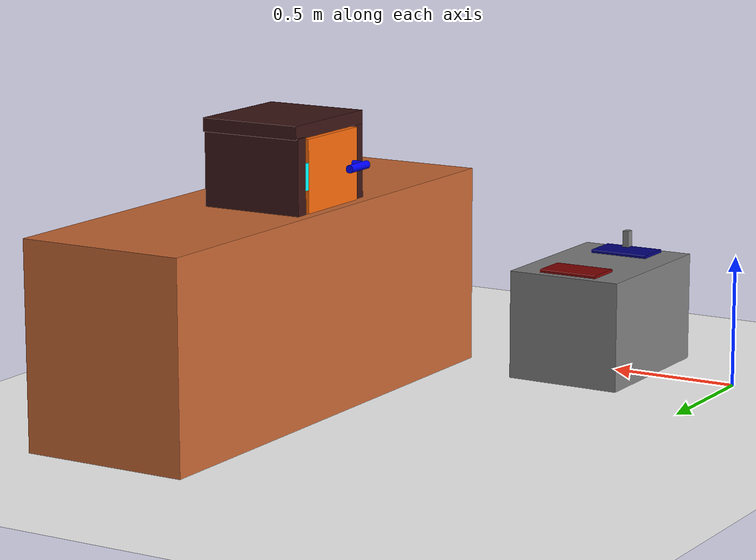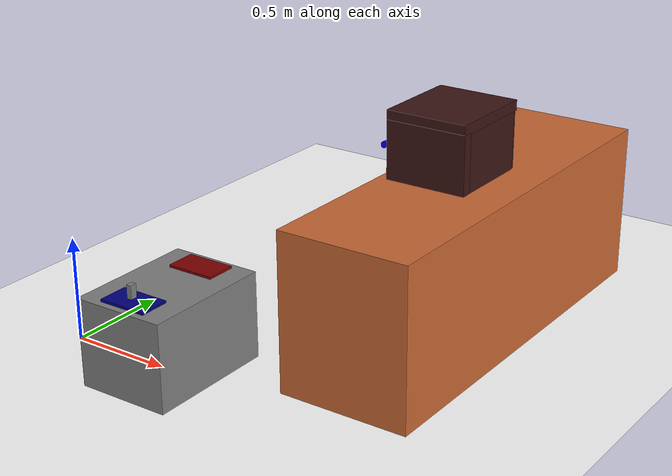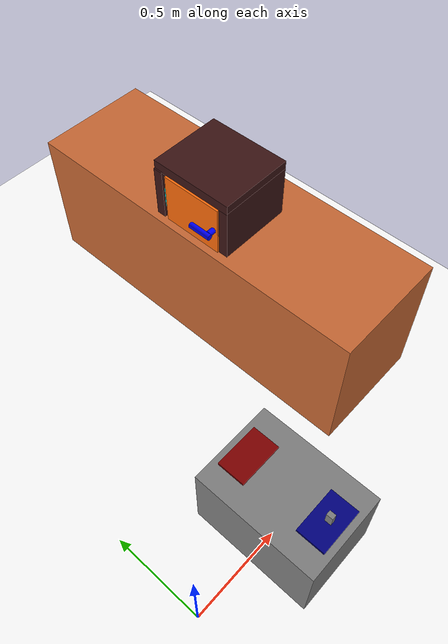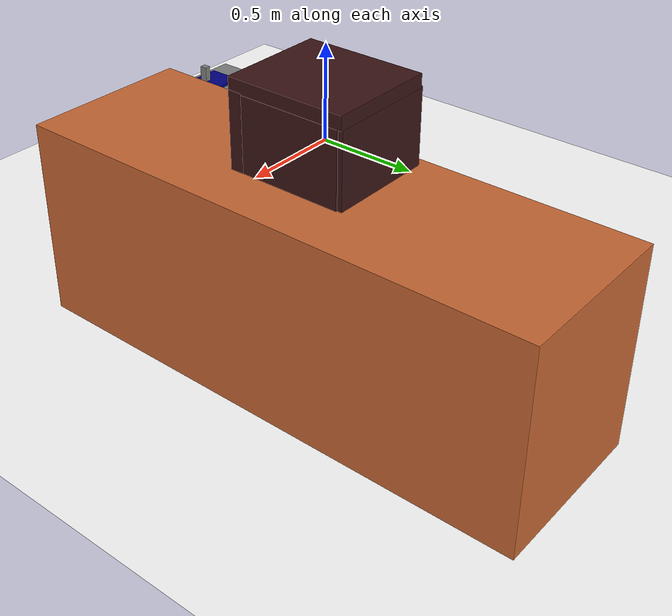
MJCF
<mujoco>
    <visual>
        <rgba haze="0.15 0.25 0.35 1"/>
        <quality shadowsize="8192"/>
        <global azimuth="220" elevation="-30"/>
    </visual>

    <asset>
        <texture builtin="checker" height="512" name="texplane" rgb1=".2 .3 .4" rgb2=".1 .15 .2" type="2d" width="512" />
        <material name="MatPlane" reflectance="0.05" shininess="0.01" specular="0.01" texrepeat="1 1" texture="texplane" texuniform="true" />
    </asset>

    <worldbody>
        <light pos="0 0 1000" castshadow="false" />
        <geom name="ground_plane" type="plane" size="5 5 10" material="MatPlane" rgba="1 1 1 1"/>
    </worldbody>

    <worldbody>
        <geom name="Table" type="box" pos="0.56428 0.000584 0.2099115" size="0.2265785 0.3210245 0.2099115" rgba=".5 .5 .5 1" />
        <geom name="pick_tray" type="box" pos="0.56428 -0.215704 0.419773" size="0.1175175 0.072463 0.01167" rgba=".0 .0 .5 1" />
        <geom name="place_tray" type="box" pos="0.56428 0.215704 0.419773" size="0.1175175 0.072463 0.01167" rgba=".5 .0 .0 1" />
        <geom name="big_table" type="box" pos="1.40 1.110 0.350" quat="0.707 0 0 0.70710" size="1 0.3210245 0.4099115" rgba="0.788 0.41 0.204 1" />
    </worldbody>

    <worldbody>
        <body name="stone" pos="0.56428 -0.221972 0.475172" >
            <freejoint/>
            <geom name="stone_box" type="box" size=".0125 .016 .032" rgba=".5 .5 .5 1" />
            <inertial pos="0 0 0" mass="0.1024" diaginertia="4.369e-5 4.028e-5 1.407e-5"/>
        </body>
    </worldbody>

    <worldbody>
        <body name="door_main_footprint" pos="1.30 1.08 0.76" quat="0.707388 0 0 -0.706825">
            <body name="door_container">
                <body name="wall1">
                    <inertial pos="0 0 0" quat="0 0 0 1" mass="1.8" diaginertia="0.012135 0.03576 0.024375"/>
                    <geom size="0.2 0.025 0.14" pos="-0.2 0.018 0.14" quat="0.707388 0 0 0.706825" type="box" rgba="0.23 0.08 0.08 1"/>
                </body>
                <body name="wall2">
                    <inertial pos="0 0 0" quat="0 0 0 1" mass="1.8" diaginertia="0.012135 0.03576 0.024375"/>
                    <geom size="0.2 0.025 0.14" pos="0.2 0.025 0.14" quat="0.707105 0 0 -0.707108" type="box" rgba="0.23 0.08 0.08 1"/>
                </body>
                <body name="wall3">
                    <inertial pos="0 0 0" quat="0 0 0 1" mass="1.8" diaginertia="0.012135 0.03576 0.024375"/>
                    <geom size="0.2 0.025 0.14" pos="-0.0069 0.1984 0.14" quat="1.32679e-06 0 0 1" type="box" rgba="0.23 0.08 0.08 1"/>
                </body>
                <body name="wall4">
                    <inertial pos="0 0 0" quat="0 0 0 1" mass="2.0" diaginertia="0.027083 0.0604167 0.034167"/>
                    <geom size="0.225 0.025 0.2" pos="-0.00029 0.02489 0.3" quat="0.707388 0.706825 0 0" type="box" rgba="0.23 0.08 0.08 1"/>
                </body>
            </body>
            <body name="door_main_area" pos="0 0 0.135" quat="0.707 0 0 -0.707">
                <body name="door_hinge" pos="0.1675 -0.15548 0" quat="0.707 0 0 0.707">
                    <inertial pos="0 0 0" quat="0 0 0 1" mass="0.25" diaginertia="0.000222 0.000222 0.000028"/>
                    <geom size="0.015 0.05" type="cylinder" condim="3" friction="1 1 1" rgba="0 1.0 1.0 1.0"/>
                    <joint armature="0.01" axis="0 0 1" damping="1" frictionloss="0.1" limited="true" name="door_hinge_joint" range="-1.57 0" type="hinge"/>
                    <body name="door" pos="0.164 0.010 0" quat="1 0 0 0">
                        <inertial pos="0 0 0" quat="0 0 0 1" mass="1.6" diaginertia="0.010053 0.024117 0.01473"/>
                        <geom name="door_obj" size="0.1643 0.025 0.135" type="box" rgba="1 0.423529 0.0392157 1"/>
                        <body name="door_handle_one" pos="0.140 -0.040 0" quat="0.707 -0.707 0 0">
                            <inertial pos="0 0 0" quat="0 0 0 1" mass="0.125" diaginertia="0.00002369 0.00002369 0.00001406"/>
                            <geom size="0.015 0.02" type="cylinder" rgba="0 0 1 1"/>
                            <body name="door_handle_two" pos="-0.040 0.0 -0.030" quat="0.707 0.0 0.707 0.0 ">
                                <inertial pos="0 0 0" quat="0 0 0 1" mass="0.250" diaginertia="0.0001828125 0.0001828125 0.00002812"/>
                                <geom name="door_handle_two_obj" size="0.015 0.06"  type="cylinder" rgba="0 0 1 1" condim="6" priority="1"/>
                            </body>
                        </body>
                    </body>
                </body>
            </body>
        </body>
    </worldbody>

</mujoco>
